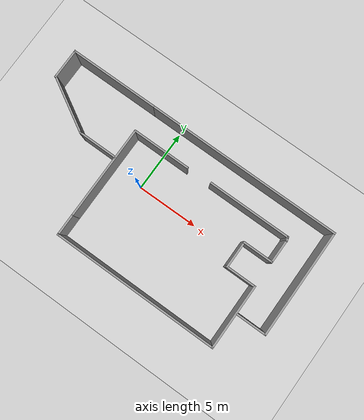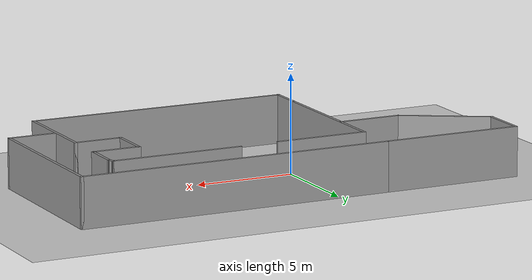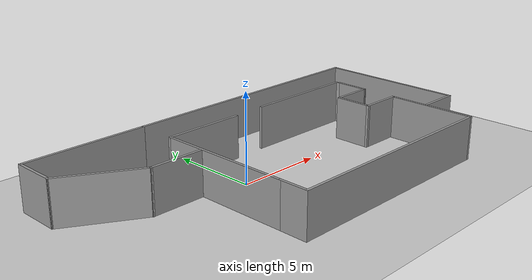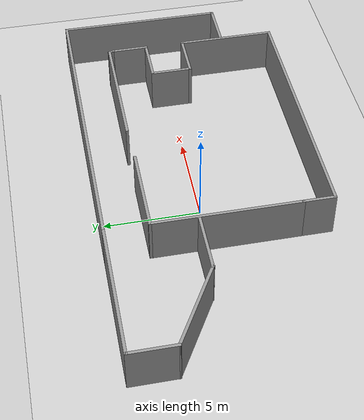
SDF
<sdf version='1.9'>
  <world name='empty'>
    <physics name='1ms' type='ignored'>
      <max_step_size>0.001</max_step_size>
      <real_time_factor>1</real_time_factor>
      <real_time_update_rate>1000</real_time_update_rate>
    </physics>
    <plugin name='gz::sim::systems::Physics' filename='ignition-gazebo-physics-system'/>
    <plugin name='gz::sim::systems::UserCommands' filename='ignition-gazebo-user-commands-system'/>
    <plugin name='gz::sim::systems::SceneBroadcaster' filename='ignition-gazebo-scene-broadcaster-system'/>
    <plugin name='gz::sim::systems::Contact' filename='ignition-gazebo-contact-system'/>
    <gravity>0 0 -9.8</gravity>
    <magnetic_field>6e-06 2.3e-05 -4.2e-05</magnetic_field>
    <atmosphere type='adiabatic'/>
    <scene>
      <ambient>0.4 0.4 0.4 1</ambient>
      <background>0.7 0.7 0.7 1</background>
      <shadows>true</shadows>
    </scene>
    <model name='ground_plane'>
      <static>true</static>
      <link name='link'>
        <collision name='collision'>
          <geometry>
            <plane>
              <normal>0 0 1</normal>
              <size>100 100</size>
            </plane>
          </geometry>
          <surface>
            <friction>
              <ode/>
            </friction>
            <bounce/>
            <contact/>
          </surface>
        </collision>
        <visual name='visual'>
          <geometry>
            <plane>
              <normal>0 0 1</normal>
              <size>100 100</size>
            </plane>
          </geometry>
          <material>
            <ambient>0.8 0.8 0.8 1</ambient>
            <diffuse>0.8 0.8 0.8 1</diffuse>
            <specular>0.8 0.8 0.8 1</specular>
          </material>
        </visual>
        <pose>0 0 0 0 -0 0</pose>
        <inertial>
          <pose>0 0 0 0 -0 0</pose>
          <mass>1</mass>
          <inertia>
            <ixx>1</ixx>
            <ixy>0</ixy>
            <ixz>0</ixz>
            <iyy>1</iyy>
            <iyz>0</iyz>
            <izz>1</izz>
          </inertia>
        </inertial>
        <enable_wind>false</enable_wind>
      </link>
      <pose>0 0 0 0 -0 0</pose>
      <self_collide>false</self_collide>
    </model>
 <model name='laburint1'>
    <pose>1.87269 -0.516033 0 0 -0 0</pose>
    <link name='Wall_0'>
      <collision name='Wall_0_Collision'>
        <geometry>
          <box>
            <size>4.75 0.15 2.5</size>
          </box>
        </geometry>
        <pose>0 0 1.25 0 -0 0</pose>
      </collision>
      <visual name='Wall_0_Visual'>
        <pose>0 0 1.25 0 -0 0</pose>
        <geometry>
          <box>
            <size>4.75 0.15 2.5</size>
          </box>
        </geometry>
        <material>
          <script>
            <uri>file://media/materials/scripts/gazebo.material</uri>
            <name>Gazebo/Grey</name>
          </script>
          <ambient>1 1 1 1</ambient>
        </material>
        <meta>
          <layer>0</layer>
        </meta>
      </visual>
      <pose>-2.02325 3.47818 0 0 -0 0</pose>
    </link>
    <link name='Wall_10'>
      <collision name='Wall_10_Collision'>
        <geometry>
          <box>
            <size>16 0.15 2.5</size>
          </box>
        </geometry>
        <pose>0 0 1.25 0 -0 0</pose>
      </collision>
      <visual name='Wall_10_Visual'>
        <pose>0 0 1.25 0 -0 0</pose>
        <geometry>
          <box>
            <size>16 0.15 2.5</size>
          </box>
        </geometry>
        <material>
          <script>
            <uri>file://media/materials/scripts/gazebo.material</uri>
            <name>Gazebo/Grey</name>
          </script>
          <ambient>1 1 1 1</ambient>
        </material>
        <meta>
          <layer>0</layer>
        </meta>
      </visual>
      <pose>3.56372 5.72182 0 0 -0 0</pose>
    </link>
    <link name='Wall_11'>
      <collision name='Wall_11_Collision'>
        <geometry>
          <box>
            <size>8.75 0.15 2.5</size>
          </box>
        </geometry>
        <pose>0 0 1.25 0 -0 0</pose>
      </collision>
      <visual name='Wall_11_Visual'>
        <pose>0 0 1.25 0 -0 0</pose>
        <geometry>
          <box>
            <size>8.75 0.15 2.5</size>
          </box>
        </geometry>
        <material>
          <script>
            <uri>file://media/materials/scripts/gazebo.material</uri>
            <name>Gazebo/Grey</name>
          </script>
          <ambient>1 1 1 1</ambient>
        </material>
        <meta>
          <layer>0</layer>
        </meta>
      </visual>
      <pose>11.4887 1.42182 0 0 -0 -1.5708</pose>
    </link>
    <link name='Wall_12'>
      <collision name='Wall_12_Collision'>
        <geometry>
          <box>
            <size>2.5 0.15 2.5</size>
          </box>
        </geometry>
        <pose>0 0 1.25 0 -0 0</pose>
      </collision>
      <visual name='Wall_12_Visual'>
        <pose>0 0 1.25 0 -0 0</pose>
        <geometry>
          <box>
            <size>2.5 0.15 2.5</size>
          </box>
        </geometry>
        <material>
          <script>
            <uri>file://media/materials/scripts/gazebo.material</uri>
            <name>Gazebo/Grey</name>
          </script>
          <ambient>1 1 1 1</ambient>
        </material>
        <meta>
          <layer>0</layer>
        </meta>
      </visual>
      <pose>10.3137 -2.87819 0 0 -0 3.14159</pose>
    </link>
    <link name='Wall_14'>
      <collision name='Wall_14_Collision'>
        <geometry>
          <box>
            <size>2 0.15 2.5</size>
          </box>
        </geometry>
        <pose>0 0 1.25 0 -0 0</pose>
      </collision>
      <visual name='Wall_14_Visual'>
        <pose>0 0 1.25 0 -0 0</pose>
        <geometry>
          <box>
            <size>2 0.15 2.5</size>
          </box>
        </geometry>
        <material>
          <script>
            <uri>file://media/materials/scripts/gazebo.material</uri>
            <name>Gazebo/Grey</name>
          </script>
          <ambient>1 1 1 1</ambient>
        </material>
        <meta>
          <layer>0</layer>
        </meta>
      </visual>
      <pose>9.02675 2.40319 0 0 -0 1.5708</pose>
    </link>
    <link name='Wall_16'>
      <collision name='Wall_16_Collision'>
        <geometry>
          <box>
            <size>0.15 0.15 2.5</size>
          </box>
        </geometry>
        <pose>0 0 1.25 0 -0 0</pose>
      </collision>
      <visual name='Wall_16_Visual'>
        <pose>0 0 1.25 0 -0 0</pose>
        <geometry>
          <box>
            <size>0.15 0.15 2.5</size>
          </box>
        </geometry>
        <material>
          <script>
            <uri>file://media/materials/scripts/gazebo.material</uri>
            <name>Gazebo/Grey</name>
          </script>
          <ambient>1 1 1 1</ambient>
        </material>
        <meta>
          <layer>0</layer>
        </meta>
      </visual>
      <pose>9.02675 3.32818 0 0 -0 0</pose>
    </link>
    <link name='Wall_18'>
      <collision name='Wall_18_Collision'>
        <geometry>
          <box>
            <size>6.75 0.15 2.5</size>
          </box>
        </geometry>
        <pose>0 0 1.25 0 -0 0</pose>
      </collision>
      <visual name='Wall_18_Visual'>
        <pose>0 0 1.25 0 -0 0</pose>
        <geometry>
          <box>
            <size>6.75 0.15 2.5</size>
          </box>
        </geometry>
        <material>
          <script>
            <uri>file://media/materials/scripts/gazebo.material</uri>
            <name>Gazebo/Grey</name>
          </script>
          <ambient>1 1 1 1</ambient>
        </material>
        <meta>
          <layer>0</layer>
        </meta>
      </visual>
      <pose>5.65666 3.56966 0 0 -0 0</pose>
    </link>
    <link name='Wall_19'>
      <collision name='Wall_19_Collision'>
        <geometry>
          <box>
            <size>0.401443 0.15 2.5</size>
          </box>
        </geometry>
        <pose>0 0 1.25 0 -0 0</pose>
      </collision>
      <visual name='Wall_19_Visual'>
        <pose>0 0 1.25 0 -0 0</pose>
        <geometry>
          <box>
            <size>0.401443 0.15 2.5</size>
          </box>
        </geometry>
        <material>
          <script>
            <uri>file://media/materials/scripts/gazebo.material</uri>
            <name>Gazebo/Grey</name>
          </script>
          <ambient>1 1 1 1</ambient>
        </material>
        <meta>
          <layer>0</layer>
        </meta>
      </visual>
      <pose>8.9917 3.44892 0 0 -0 -1.28831</pose>
    </link>
    <link name='Wall_2'>
      <collision name='Wall_2_Collision'>
        <geometry>
          <box>
            <size>7.75 0.15 2.5</size>
          </box>
        </geometry>
        <pose>0 0 1.25 0 -0 0</pose>
      </collision>
      <visual name='Wall_2_Visual'>
        <pose>0 0 1.25 0 -0 0</pose>
        <geometry>
          <box>
            <size>7.75 0.15 2.5</size>
          </box>
        </geometry>
        <material>
          <script>
            <uri>file://media/materials/scripts/gazebo.material</uri>
            <name>Gazebo/Grey</name>
          </script>
          <ambient>1 1 1 1</ambient>
        </material>
        <meta>
          <layer>0</layer>
        </meta>
      </visual>
      <pose>-4.32325 -0.321815 0 0 -0 -1.5708</pose>
    </link>
    <link name='Wall_21'>
      <collision name='Wall_21_Collision'>
        <geometry>
          <box>
            <size>7.25 0.15 2.5</size>
          </box>
        </geometry>
        <pose>0 0 1.25 0 -0 0</pose>
      </collision>
      <visual name='Wall_21_Visual'>
        <pose>0 0 1.25 0 -0 0</pose>
        <geometry>
          <box>
            <size>7.25 0.15 2.5</size>
          </box>
        </geometry>
        <material>
          <script>
            <uri>file://media/materials/scripts/gazebo.material</uri>
            <name>Gazebo/Grey</name>
          </script>
          <ambient>1 1 1 1</ambient>
        </material>
        <meta>
          <layer>0</layer>
        </meta>
      </visual>
      <pose>-7.91127 5.72182 0 0 -0 3.14159</pose>
    </link>
    <link name='Wall_22'>
      <collision name='Wall_22_Collision'>
        <geometry>
          <box>
            <size>2.5 0.15 2.5</size>
          </box>
        </geometry>
        <pose>0 0 1.25 0 -0 0</pose>
      </collision>
      <visual name='Wall_22_Visual'>
        <pose>0 0 1.25 0 -0 0</pose>
        <geometry>
          <box>
            <size>2.5 0.15 2.5</size>
          </box>
        </geometry>
        <material>
          <script>
            <uri>file://media/materials/scripts/gazebo.material</uri>
            <name>Gazebo/Grey</name>
          </script>
          <ambient>1 1 1 1</ambient>
        </material>
        <meta>
          <layer>0</layer>
        </meta>
      </visual>
      <pose>-11.4613 4.54681 0 0 -0 -1.5708</pose>
    </link>
    <link name='Wall_23'>
      <collision name='Wall_23_Collision'>
        <geometry>
          <box>
            <size>4.75 0.15 2.5</size>
          </box>
        </geometry>
        <pose>0 0 1.25 0 -0 0</pose>
      </collision>
      <visual name='Wall_23_Visual'>
        <pose>0 0 1.25 0 -0 0</pose>
        <geometry>
          <box>
            <size>4.75 0.15 2.5</size>
          </box>
        </geometry>
        <material>
          <script>
            <uri>file://media/materials/scripts/gazebo.material</uri>
            <name>Gazebo/Grey</name>
          </script>
          <ambient>1 1 1 1</ambient>
        </material>
        <meta>
          <layer>0</layer>
        </meta>
      </visual>
      <pose>-9.46942 2.22181 0 0 -0 -0.523599</pose>
    </link>
    <link name='Wall_26'>
      <collision name='Wall_26_Collision'>
        <geometry>
          <box>
            <size>3.25 0.15 2.5</size>
          </box>
        </geometry>
        <pose>0 0 1.25 0 -0 0</pose>
      </collision>
      <visual name='Wall_26_Visual'>
        <pose>0 0 1.25 0 -0 0</pose>
        <geometry>
          <box>
            <size>3.25 0.15 2.5</size>
          </box>
        </geometry>
        <material>
          <script>
            <uri>file://media/materials/scripts/gazebo.material</uri>
            <name>Gazebo/Grey</name>
          </script>
          <ambient>1 1 1 1</ambient>
        </material>
        <meta>
          <layer>0</layer>
        </meta>
      </visual>
      <pose>-5.92756 1.07181 0 0 -0 0</pose>
    </link>
    <link name='Wall_3'>
      <collision name='Wall_3_Collision'>
        <geometry>
          <box>
            <size>1.75 0.15 2.5</size>
          </box>
        </geometry>
        <pose>0 0 1.25 0 -0 0</pose>
      </collision>
      <visual name='Wall_3_Visual'>
        <pose>0 0 1.25 0 -0 0</pose>
        <geometry>
          <box>
            <size>1.75 0.15 2.5</size>
          </box>
        </geometry>
        <material>
          <script>
            <uri>file://media/materials/scripts/gazebo.material</uri>
            <name>Gazebo/Grey</name>
          </script>
          <ambient>1 1 1 1</ambient>
        </material>
        <meta>
          <layer>0</layer>
        </meta>
      </visual>
      <pose>-4.32325 -4.92181 0 0 -0 -1.5708</pose>
    </link>
    <link name='Wall_4'>
      <collision name='Wall_4_Collision'>
        <geometry>
          <box>
            <size>13.5 0.15 2.5</size>
          </box>
        </geometry>
        <pose>0 0 1.25 0 -0 0</pose>
      </collision>
      <visual name='Wall_4_Visual'>
        <pose>0 0 1.25 0 -0 0</pose>
        <geometry>
          <box>
            <size>13.5 0.15 2.5</size>
          </box>
        </geometry>
        <material>
          <script>
            <uri>file://media/materials/scripts/gazebo.material</uri>
            <name>Gazebo/Grey</name>
          </script>
          <ambient>1 1 1 1</ambient>
        </material>
        <meta>
          <layer>0</layer>
        </meta>
      </visual>
      <pose>2.35175 -5.72182 0 0 -0 0</pose>
    </link>
    <link name='Wall_5'>
      <collision name='Wall_5_Collision'>
        <geometry>
          <box>
            <size>5.25 0.15 2.5</size>
          </box>
        </geometry>
        <pose>0 0 1.25 0 -0 0</pose>
      </collision>
      <visual name='Wall_5_Visual'>
        <pose>0 0 1.25 0 -0 0</pose>
        <geometry>
          <box>
            <size>5.25 0.15 2.5</size>
          </box>
        </geometry>
        <material>
          <script>
            <uri>file://media/materials/scripts/gazebo.material</uri>
            <name>Gazebo/Grey</name>
          </script>
          <ambient>1 1 1 1</ambient>
        </material>
        <meta>
          <layer>0</layer>
        </meta>
      </visual>
      <pose>9.02675 -3.17182 0 0 -0 1.5708</pose>
    </link>
    <link name='Wall_6'>
      <collision name='Wall_6_Collision'>
        <geometry>
          <box>
            <size>2.5 0.15 2.5</size>
          </box>
        </geometry>
        <pose>0 0 1.25 0 -0 0</pose>
      </collision>
      <visual name='Wall_6_Visual'>
        <pose>0 0 1.25 0 -0 0</pose>
        <geometry>
          <box>
            <size>2.5 0.15 2.5</size>
          </box>
        </geometry>
        <material>
          <script>
            <uri>file://media/materials/scripts/gazebo.material</uri>
            <name>Gazebo/Grey</name>
          </script>
          <ambient>1 1 1 1</ambient>
        </material>
        <meta>
          <layer>0</layer>
        </meta>
      </visual>
      <pose>7.85175 -0.621815 0 0 -0 3.14159</pose>
    </link>
    <link name='Wall_7'>
      <collision name='Wall_7_Collision'>
        <geometry>
          <box>
            <size>2.25 0.15 2.5</size>
          </box>
        </geometry>
        <pose>0 0 1.25 0 -0 0</pose>
      </collision>
      <visual name='Wall_7_Visual'>
        <pose>0 0 1.25 0 -0 0</pose>
        <geometry>
          <box>
            <size>2.25 0.15 2.5</size>
          </box>
        </geometry>
        <material>
          <script>
            <uri>file://media/materials/scripts/gazebo.material</uri>
            <name>Gazebo/Grey</name>
          </script>
          <ambient>1 1 1 1</ambient>
        </material>
        <meta>
          <layer>0</layer>
        </meta>
      </visual>
      <pose>6.67675 0.428185 0 0 -0 1.5708</pose>
    </link>
    <link name='Wall_8'>
      <collision name='Wall_8_Collision'>
        <geometry>
          <box>
            <size>2.5 0.15 2.5</size>
          </box>
        </geometry>
        <pose>0 0 1.25 0 -0 0</pose>
      </collision>
      <visual name='Wall_8_Visual'>
        <pose>0 0 1.25 0 -0 0</pose>
        <geometry>
          <box>
            <size>2.5 0.15 2.5</size>
          </box>
        </geometry>
        <material>
          <script>
            <uri>file://media/materials/scripts/gazebo.material</uri>
            <name>Gazebo/Grey</name>
          </script>
          <ambient>1 1 1 1</ambient>
        </material>
        <meta>
          <layer>0</layer>
        </meta>
      </visual>
      <pose>7.85175 1.47819 0 0 -0 0</pose>
    </link>
    <static>1</static>
  </model>
    <light name='sun' type='directional'>
      <pose>0 0 10 0 -0 0</pose>
      <cast_shadows>true</cast_shadows>
      <intensity>1</intensity>
      <direction>-0.5 0.1 -0.9</direction>
      <diffuse>0.8 0.8 0.8 1</diffuse>
      <specular>0.2 0.2 0.2 1</specular>
      <attenuation>
        <range>1000</range>
        <linear>0.01</linear>
        <constant>0.90000000000000002</constant>
        <quadratic>0.001</quadratic>
      </attenuation>
      <spot>
        <inner_angle>0</inner_angle>
        <outer_angle>0</outer_angle>
        <falloff>0</falloff>
      </spot>
    </light>
  </world>
</sdf>
